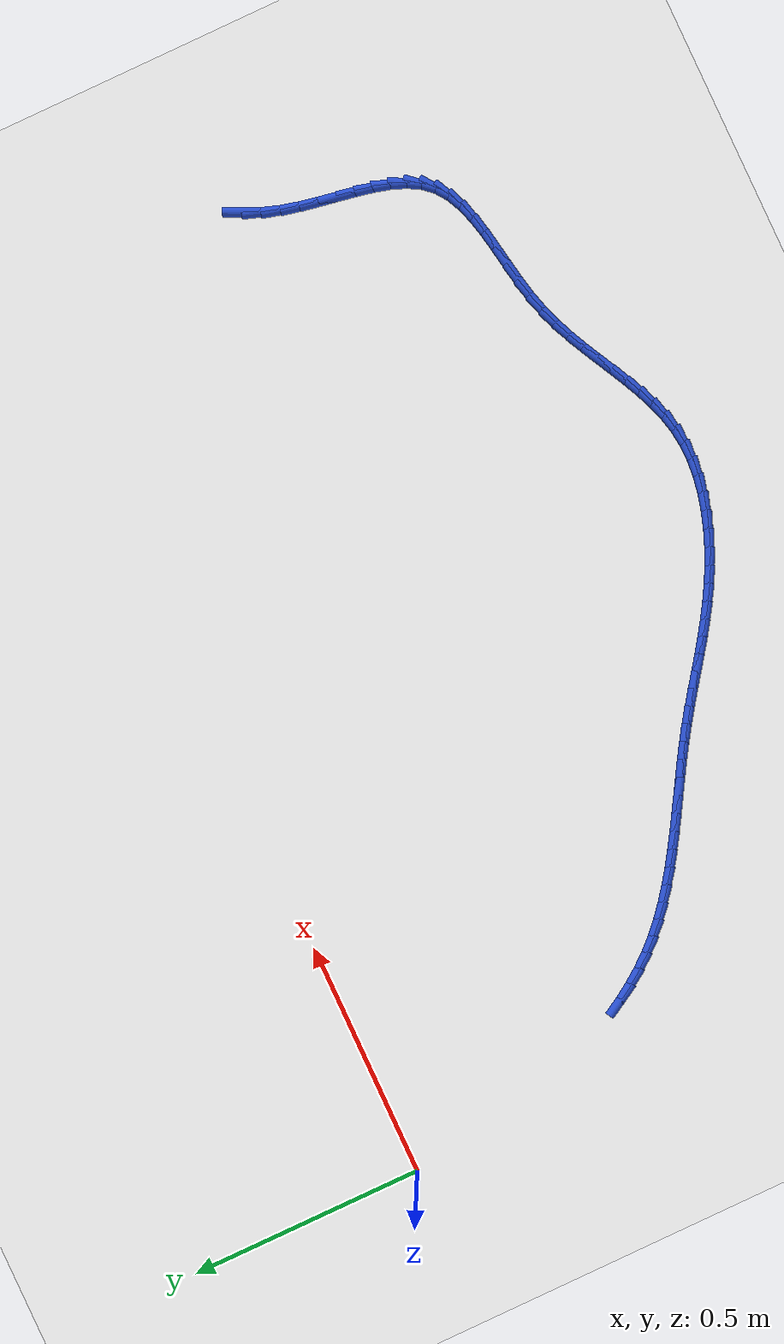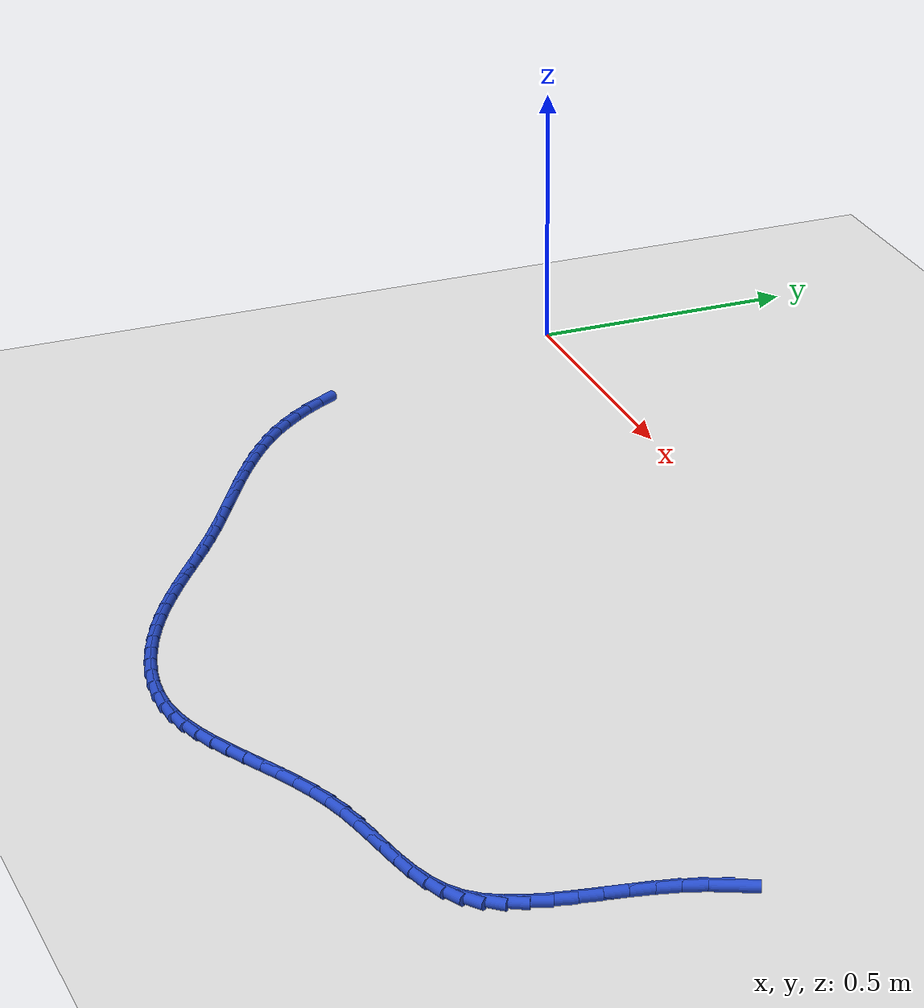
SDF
<sdf version="1.6">
 <world name="default">
  <model name="ground_plane">
   <static>1</static>
   <link name="link">
    <collision name="collision">
     <geometry><plane><normal>0 0 1</normal><size>100 100</size></plane></geometry>
     <surface><friction><ode><mu>100</mu><mu2>50</mu2></ode></friction></surface>
    </collision>
    <visual name="visual">
     <cast_shadows>0</cast_shadows>
     <geometry><plane><normal>0 0 1</normal><size>100 100</size></plane></geometry>
     <material>
      <script><uri>file://media/materials/scripts/gazebo.material</uri><name>Gazebo/WhiteGlow</name></script>
     </material>
    </visual>
   </link>
  </model>
  <model name="line">
   <link name="link_112">
    <pose>1.9185978857070742 -0.5021319839390961 0.01 0 1.57 1.1335719482349775</pose>
    <collision name="collision">
     <geometry><cylinder><radius>0.01</radius><length>0.08</length></cylinder></geometry>
    </collision>
    <visual name="visual">
     <material>
      <script><name>Gazebo/Blue</name><uri>file://media/materials/scripts/gazebo.material</uri></script>
     </material>
     <geometry><cylinder><radius>0.01</radius><length>0.08</length></cylinder></geometry>
    </visual>
   </link>
   <link name="link_113">
    <pose>1.9023092001907096 -0.5369819826895778 0.01 0 1.57 1.2430473741811647</pose>
    <collision name="collision">
     <geometry><cylinder><radius>0.01</radius><length>0.08</length></cylinder></geometry>
    </collision>
    <visual name="visual">
     <material>
      <script><name>Gazebo/Blue</name><uri>file://media/materials/scripts/gazebo.material</uri></script>
     </material>
     <geometry><cylinder><radius>0.01</radius><length>0.08</length></cylinder></geometry>
    </visual>
   </link>
   <link name="link_114">
    <pose>1.8897538018090976 -0.5739083593463385 0.01 0 1.57 1.3225783525256556</pose>
    <collision name="collision">
     <geometry><cylinder><radius>0.01</radius><length>0.08</length></cylinder></geometry>
    </collision>
    <visual name="visual">
     <material>
      <script><name>Gazebo/Blue</name><uri>file://media/materials/scripts/gazebo.material</uri></script>
     </material>
     <geometry><cylinder><radius>0.01</radius><length>0.08</length></cylinder></geometry>
    </visual>
   </link>
   <link name="link_115">
    <pose>1.880048833603324 -0.6122006305887772 0.01 0 1.57 1.373758591070866</pose>
    <collision name="collision">
     <geometry><cylinder><radius>0.01</radius><length>0.08</length></cylinder></geometry>
    </collision>
    <visual name="visual">
     <material>
      <script><name>Gazebo/Blue</name><uri>file://media/materials/scripts/gazebo.material</uri></script>
     </material>
     <geometry><cylinder><radius>0.01</radius><length>0.08</length></cylinder></geometry>
    </visual>
   </link>
   <link name="link_116">
    <pose>1.8722779103995035 -0.6511276724083286 0.01 0 1.57 1.3986030081499672</pose>
    <collision name="collision">
     <geometry><cylinder><radius>0.01</radius><length>0.08</length></cylinder></geometry>
    </collision>
    <visual name="visual">
     <material>
      <script><name>Gazebo/Blue</name><uri>file://media/materials/scripts/gazebo.material</uri></script>
     </material>
     <geometry><cylinder><radius>0.01</radius><length>0.08</length></cylinder></geometry>
    </visual>
   </link>
   <link name="link_117">
    <pose>1.8655246470237499 -0.6899583607964278 0.01 0 1.57 1.3975142318593234</pose>
    <collision name="collision">
     <geometry><cylinder><radius>0.01</radius><length>0.08</length></cylinder></geometry>
    </collision>
    <visual name="visual">
     <material>
      <script><name>Gazebo/Blue</name><uri>file://media/materials/scripts/gazebo.material</uri></script>
     </material>
     <geometry><cylinder><radius>0.01</radius><length>0.08</length></cylinder></geometry>
    </visual>
   </link>
   <link name="link_118">
    <pose>1.8588726583021777 -0.727961571744509 0.01 0 1.57 1.3687042649281265</pose>
    <collision name="collision">
     <geometry><cylinder><radius>0.01</radius><length>0.08</length></cylinder></geometry>
    </collision>
    <visual name="visual">
     <material>
      <script><name>Gazebo/Blue</name><uri>file://media/materials/scripts/gazebo.material</uri></script>
     </material>
     <geometry><cylinder><radius>0.01</radius><length>0.08</length></cylinder></geometry>
    </visual>
   </link>
   <link name="link_119">
    <pose>1.8514055590609004 -0.7644061812440083 0.01 0 1.57 1.307718354267309</pose>
    <collision name="collision">
     <geometry><cylinder><radius>0.01</radius><length>0.08</length></cylinder></geometry>
    </collision>
    <visual name="visual">
     <material>
      <script><name>Gazebo/Blue</name><uri>file://media/materials/scripts/gazebo.material</uri></script>
     </material>
     <geometry><cylinder><radius>0.01</radius><length>0.08</length></cylinder></geometry>
    </visual>
   </link>
   <link name="link_120">
    <pose>1.8422069641260326 -0.7985610652863602 0.01 0 1.57 1.2072131625357594</pose>
    <collision name="collision">
     <geometry><cylinder><radius>0.01</radius><length>0.08</length></cylinder></geometry>
    </collision>
    <visual name="visual">
     <material>
      <script><name>Gazebo/Blue</name><uri>file://media/materials/scripts/gazebo.material</uri></script>
     </material>
     <geometry><cylinder><radius>0.01</radius><length>0.08</length></cylinder></geometry>
    </visual>
   </link>
   <link name="link_121">
    <pose>1.8303604883236881 -0.8296950998629993 0.01 0 1.57 1.0581757337790911</pose>
    <collision name="collision">
     <geometry><cylinder><radius>0.01</radius><length>0.08</length></cylinder></geometry>
    </collision>
    <visual name="visual">
     <material>
      <script><name>Gazebo/Blue</name><uri>file://media/materials/scripts/gazebo.material</uri></script>
     </material>
     <geometry><cylinder><radius>0.01</radius><length>0.08</length></cylinder></geometry>
    </visual>
   </link>
   <link name="link_122">
    <pose>1.8149497464799809 -0.8570771609653605 0.01 0 1.57 0.8556081616285405</pose>
    <collision name="collision">
     <geometry><cylinder><radius>0.01</radius><length>0.08</length></cylinder></geometry>
    </collision>
    <visual name="visual">
     <material>
      <script><name>Gazebo/Blue</name><uri>file://media/materials/scripts/gazebo.material</uri></script>
     </material>
     <geometry><cylinder><radius>0.01</radius><length>0.08</length></cylinder></geometry>
    </visual>
   </link>
   <link name="link_123">
    <pose>1.7950592143111954 -0.8799769476190402 0.01 0 1.57 0.6289952313233421</pose>
    <collision name="collision">
     <geometry><cylinder><radius>0.01</radius><length>0.08</length></cylinder></geometry>
    </collision>
    <visual name="visual">
     <material>
      <script><name>Gazebo/Blue</name><uri>file://media/materials/scripts/gazebo.material</uri></script>
     </material>
     <geometry><cylinder><radius>0.01</radius><length>0.08</length></cylinder></geometry>
    </visual>
   </link>
   <link name="link_124">
    <pose>1.7701951935336386 -0.8980674358535167 0.01 0 1.57 0.44684547173565553</pose>
    <collision name="collision">
     <geometry><cylinder><radius>0.01</radius><length>0.08</length></cylinder></geometry>
    </collision>
    <visual name="visual">
     <material>
      <script><name>Gazebo/Blue</name><uri>file://media/materials/scripts/gazebo.material</uri></script>
     </material>
     <geometry><cylinder><radius>0.01</radius><length>0.08</length></cylinder></geometry>
    </visual>
   </link>
   <link name="link_125">
    <pose>1.7409646358441733 -0.9120738526890902 0.01 0 1.57 0.31843951065249143</pose>
    <collision name="collision">
     <geometry><cylinder><radius>0.01</radius><length>0.08</length></cylinder></geometry>
    </collision>
    <visual name="visual">
     <material>
      <script><name>Gazebo/Blue</name><uri>file://media/materials/scripts/gazebo.material</uri></script>
     </material>
     <geometry><cylinder><radius>0.01</radius><length>0.08</length></cylinder></geometry>
    </visual>
   </link>
   <link name="link_126">
    <pose>1.7081517575672376 -0.9228908948987551 0.01 0 1.57 0.23490042941704606</pose>
    <collision name="collision">
     <geometry><cylinder><radius>0.01</radius><length>0.08</length></cylinder></geometry>
    </collision>
    <visual name="visual">
     <material>
      <script><name>Gazebo/Blue</name><uri>file://media/materials/scripts/gazebo.material</uri></script>
     </material>
     <geometry><cylinder><radius>0.01</radius><length>0.08</length></cylinder></geometry>
    </visual>
   </link>
   <link name="link_127">
    <pose>1.672540775027272 -0.9314132592555054 0.01 0 1.57 0.18708612869953112</pose>
    <collision name="collision">
     <geometry><cylinder><radius>0.01</radius><length>0.08</length></cylinder></geometry>
    </collision>
    <visual name="visual">
     <material>
      <script><name>Gazebo/Blue</name><uri>file://media/materials/scripts/gazebo.material</uri></script>
     </material>
     <geometry><cylinder><radius>0.01</radius><length>0.08</length></cylinder></geometry>
    </visual>
   </link>
   <link name="link_128">
    <pose>1.6349159045487156 -0.9385356425323351 0.01 0 1.57 0.16868597947921388</pose>
    <collision name="collision">
     <geometry><cylinder><radius>0.01</radius><length>0.08</length></cylinder></geometry>
    </collision>
    <visual name="visual">
     <material>
      <script><name>Gazebo/Blue</name><uri>file://media/materials/scripts/gazebo.material</uri></script>
     </material>
     <geometry><cylinder><radius>0.01</radius><length>0.08</length></cylinder></geometry>
    </visual>
   </link>
   <link name="link_129">
    <pose>1.596061362456009 -0.9451527415022385 0.01 0 1.57 0.17642908012464978</pose>
    <collision name="collision">
     <geometry><cylinder><radius>0.01</radius><length>0.08</length></cylinder></geometry>
    </collision>
    <visual name="visual">
     <material>
      <script><name>Gazebo/Blue</name><uri>file://media/materials/scripts/gazebo.material</uri></script>
     </material>
     <geometry><cylinder><radius>0.01</radius><length>0.08</length></cylinder></geometry>
    </visual>
   </link>
   <link name="link_130">
    <pose>1.5567613650735914 -0.9521592529382098 0.01 0 1.57 0.20966430051776075</pose>
    <collision name="collision">
     <geometry><cylinder><radius>0.01</radius><length>0.08</length></cylinder></geometry>
    </collision>
    <visual name="visual">
     <material>
      <script><name>Gazebo/Blue</name><uri>file://media/materials/scripts/gazebo.material</uri></script>
     </material>
     <geometry><cylinder><radius>0.01</radius><length>0.08</length></cylinder></geometry>
    </visual>
   </link>
   <link name="link_131">
    <pose>1.5178001287259022 -0.9604498736132427 0.01 0 1.57 0.26969174647342087</pose>
    <collision name="collision">
     <geometry><cylinder><radius>0.01</radius><length>0.08</length></cylinder></geometry>
    </collision>
    <visual name="visual">
     <material>
      <script><name>Gazebo/Blue</name><uri>file://media/materials/scripts/gazebo.material</uri></script>
     </material>
     <geometry><cylinder><radius>0.01</radius><length>0.08</length></cylinder></geometry>
    </visual>
   </link>
   <link name="link_132">
    <pose>1.4799561974384758 -0.9709109315145228 0.01 0 1.57 0.34287748087123454</pose>
    <collision name="collision">
     <geometry><cylinder><radius>0.01</radius><length>0.08</length></cylinder></geometry>
    </collision>
    <visual name="visual">
     <material>
      <script><name>Gazebo/Blue</name><uri>file://media/materials/scripts/gazebo.material</uri></script>
     </material>
     <geometry><cylinder><radius>0.01</radius><length>0.08</length></cylinder></geometry>
    </visual>
   </link>
   <link name="link_133">
    <pose>1.4436341930531589 -0.9838770780134184 0.01 0 1.57 0.40303287285509004</pose>
    <collision name="collision">
     <geometry><cylinder><radius>0.01</radius><length>0.08</length></cylinder></geometry>
    </collision>
    <visual name="visual">
     <material>
      <script><name>Gazebo/Blue</name><uri>file://media/materials/scripts/gazebo.material</uri></script>
     </material>
     <geometry><cylinder><radius>0.01</radius><length>0.08</length></cylinder></geometry>
    </visual>
   </link>
   <link name="link_134">
    <pose>1.4086389750420494 -0.9987980881918621 0.01 0 1.57 0.44669279509561544</pose>
    <collision name="collision">
     <geometry><cylinder><radius>0.01</radius><length>0.08</length></cylinder></geometry>
    </collision>
    <visual name="visual">
     <material>
      <script><name>Gazebo/Blue</name><uri>file://media/materials/scripts/gazebo.material</uri></script>
     </material>
     <geometry><cylinder><radius>0.01</radius><length>0.08</length></cylinder></geometry>
    </visual>
   </link>
   <link name="link_135">
    <pose>1.3747213771827087 -1.0150440288030762 0.01 0 1.57 0.4731846038883604</pose>
    <collision name="collision">
     <geometry><cylinder><radius>0.01</radius><length>0.08</length></cylinder></geometry>
    </collision>
    <visual name="visual">
     <material>
      <script><name>Gazebo/Blue</name><uri>file://media/materials/scripts/gazebo.material</uri></script>
     </material>
     <geometry><cylinder><radius>0.01</radius><length>0.08</length></cylinder></geometry>
    </visual>
   </link>
   <link name="link_136">
    <pose>1.341632233252699 -1.0319849666002843 0.01 0 1.57 0.48195868831473154</pose>
    <collision name="collision">
     <geometry><cylinder><radius>0.01</radius><length>0.08</length></cylinder></geometry>
    </collision>
    <visual name="visual">
     <material>
      <script><name>Gazebo/Blue</name><uri>file://media/materials/scripts/gazebo.material</uri></script>
     </material>
     <geometry><cylinder><radius>0.01</radius><length>0.08</length></cylinder></geometry>
    </visual>
   </link>
   <link name="link_137">
    <pose>1.3091223770295817 -1.0489909683367098 0.01 0 1.57 0.4723420048394343</pose>
    <collision name="collision">
     <geometry><cylinder><radius>0.01</radius><length>0.08</length></cylinder></geometry>
    </collision>
    <visual name="visual">
     <material>
      <script><name>Gazebo/Blue</name><uri>file://media/materials/scripts/gazebo.material</uri></script>
     </material>
     <geometry><cylinder><radius>0.01</radius><length>0.08</length></cylinder></geometry>
    </visual>
   </link>
   <link name="link_138">
    <pose>1.2769426422909187 -1.0654321007655754 0.01 0 1.57 0.4434333296815296</pose>
    <collision name="collision">
     <geometry><cylinder><radius>0.01</radius><length>0.08</length></cylinder></geometry>
    </collision>
    <visual name="visual">
     <material>
      <script><name>Gazebo/Blue</name><uri>file://media/materials/scripts/gazebo.material</uri></script>
     </material>
     <geometry><cylinder><radius>0.01</radius><length>0.08</length></cylinder></geometry>
    </visual>
   </link>
   <link name="link_139">
    <pose>1.244843862814272 -1.0806784306401036 0.01 0 1.57 0.3941839964934015</pose>
    <collision name="collision">
     <geometry><cylinder><radius>0.01</radius><length>0.08</length></cylinder></geometry>
    </collision>
    <visual name="visual">
     <material>
      <script><name>Gazebo/Blue</name><uri>file://media/materials/scripts/gazebo.material</uri></script>
     </material>
     <geometry><cylinder><radius>0.01</radius><length>0.08</length></cylinder></geometry>
    </visual>
   </link>
   <link name="link_140">
    <pose>1.2125768723772026 -1.0941000247135195 0.01 0 1.57 0.32373557656736623</pose>
    <collision name="collision">
     <geometry><cylinder><radius>0.01</radius><length>0.08</length></cylinder></geometry>
    </collision>
    <visual name="visual">
     <material>
      <script><name>Gazebo/Blue</name><uri>file://media/materials/scripts/gazebo.material</uri></script>
     </material>
     <geometry><cylinder><radius>0.01</radius><length>0.08</length></cylinder></geometry>
    </visual>
   </link>
   <link name="link_141">
    <pose>1.1798925047572717 -1.1050669497390442 0.01 0 1.57 0.23208623499090125</pose>
    <collision name="collision">
     <geometry><cylinder><radius>0.01</radius><length>0.08</length></cylinder></geometry>
    </collision>
    <visual name="visual">
     <material>
      <script><name>Gazebo/Blue</name><uri>file://media/materials/scripts/gazebo.material</uri></script>
     </material>
     <geometry><cylinder><radius>0.01</radius><length>0.08</length></cylinder></geometry>
    </visual>
   </link>
   <link name="link_142">
    <pose>1.146541593732042 -1.112949272469902 0.01 0 1.57 0.12174932487859907</pose>
    <collision name="collision">
     <geometry><cylinder><radius>0.01</radius><length>0.08</length></cylinder></geometry>
    </collision>
    <visual name="visual">
     <material>
      <script><name>Gazebo/Blue</name><uri>file://media/materials/scripts/gazebo.material</uri></script>
     </material>
     <geometry><cylinder><radius>0.01</radius><length>0.08</length></cylinder></geometry>
    </visual>
   </link>
   <link name="link_143">
    <pose>1.1122880370427306 -1.1171403483273832 0.01 0 1.57 0.010542865124992518</pose>
    <collision name="collision">
     <geometry><cylinder><radius>0.01</radius><length>0.08</length></cylinder></geometry>
    </collision>
    <visual name="visual">
     <material>
      <script><name>Gazebo/Blue</name><uri>file://media/materials/scripts/gazebo.material</uri></script>
     </material>
     <geometry><cylinder><radius>0.01</radius><length>0.08</length></cylinder></geometry>
    </visual>
   </link>
   <link name="link_144">
    <pose>1.0771633900035045 -1.1175106764646874 0.01 0 1.57 -0.08750660412442757</pose>
    <collision name="collision">
     <geometry><cylinder><radius>0.01</radius><length>0.08</length></cylinder></geometry>
    </collision>
    <visual name="visual">
     <material>
      <script><name>Gazebo/Blue</name><uri>file://media/materials/scripts/gazebo.material</uri></script>
     </material>
     <geometry><cylinder><radius>0.01</radius><length>0.08</length></cylinder></geometry>
    </visual>
   </link>
   <link name="link_145">
    <pose>1.0414498131947418 -1.1143775012200545 0.01 0 1.57 -0.17325540930741337</pose>
    <collision name="collision">
     <geometry><cylinder><radius>0.01</radius><length>0.08</length></cylinder></geometry>
    </collision>
    <visual name="visual">
     <material>
      <script><name>Gazebo/Blue</name><uri>file://media/materials/scripts/gazebo.material</uri></script>
     </material>
     <geometry><cylinder><radius>0.01</radius><length>0.08</length></cylinder></geometry>
    </visual>
   </link>
   <link name="link_146">
    <pose>1.0054391160654452 -1.1080752676301193 0.01 0 1.57 -0.24844716452502966</pose>
    <collision name="collision">
     <geometry><cylinder><radius>0.01</radius><length>0.08</length></cylinder></geometry>
    </collision>
    <visual name="visual">
     <material>
      <script><name>Gazebo/Blue</name><uri>file://media/materials/scripts/gazebo.material</uri></script>
     </material>
     <geometry><cylinder><radius>0.01</radius><length>0.08</length></cylinder></geometry>
    </visual>
   </link>
   <link name="link_147">
    <pose>0.9694231080646166 -1.0989384207315136 0.01 0 1.57 -0.31486271745164096</pose>
    <collision name="collision">
     <geometry><cylinder><radius>0.01</radius><length>0.08</length></cylinder></geometry>
    </collision>
    <visual name="visual">
     <material>
      <script><name>Gazebo/Blue</name><uri>file://media/materials/scripts/gazebo.material</uri></script>
     </material>
     <geometry><cylinder><radius>0.01</radius><length>0.08</length></cylinder></geometry>
    </visual>
   </link>
   <link name="link_148">
    <pose>0.9336935986412601 -1.0873014055608718 0.01 0 1.57 -0.37416941748189153</pose>
    <collision name="collision">
     <geometry><cylinder><radius>0.01</radius><length>0.08</length></cylinder></geometry>
    </collision>
    <visual name="visual">
     <material>
      <script><name>Gazebo/Blue</name><uri>file://media/materials/scripts/gazebo.material</uri></script>
     </material>
     <geometry><cylinder><radius>0.01</radius><length>0.08</length></cylinder></geometry>
    </visual>
   </link>
   <link name="link_149">
    <pose>0.8985423972443788 -1.0734986671548263 0.01 0 1.57 -0.4278768017499381</pose>
    <collision name="collision">
     <geometry><cylinder><radius>0.01</radius><length>0.08</length></cylinder></geometry>
    </collision>
    <visual name="visual">
     <material>
      <script><name>Gazebo/Blue</name><uri>file://media/materials/scripts/gazebo.material</uri></script>
     </material>
     <geometry><cylinder><radius>0.01</radius><length>0.08</length></cylinder></geometry>
    </visual>
   </link>
   <link name="link_150">
    <pose>0.864261313322975 -1.0578646505500109 0.01 0 1.57 -0.47731258814833055</pose>
    <collision name="collision">
     <geometry><cylinder><radius>0.01</radius><length>0.08</length></cylinder></geometry>
    </collision>
    <visual name="visual">
     <material>
      <script><name>Gazebo/Blue</name><uri>file://media/materials/scripts/gazebo.material</uri></script>
     </material>
     <geometry><cylinder><radius>0.01</radius><length>0.08</length></cylinder></geometry>
    </visual>
   </link>
   <link name="link_151">
    <pose>0.831136925523728 -1.04073272340539 0.01 0 1.57 -0.5218446385611284</pose>
    <collision name="collision">
     <geometry><cylinder><radius>0.01</radius><length>0.08</length></cylinder></geometry>
    </collision>
    <visual name="visual">
     <material>
      <script><name>Gazebo/Blue</name><uri>file://media/materials/scripts/gazebo.material</uri></script>
     </material>
     <geometry><cylinder><radius>0.01</radius><length>0.08</length></cylinder></geometry>
    </visual>
   </link>
   <link name="link_152">
    <pose>0.7992406810797157 -1.0223919432021549 0.01 0 1.57 -0.559009566767424</pose>
    <collision name="collision">
     <geometry><cylinder><radius>0.01</radius><length>0.08</length></cylinder></geometry>
    </collision>
    <visual name="visual">
     <material>
      <script><name>Gazebo/Blue</name><uri>file://media/materials/scripts/gazebo.material</uri></script>
     </material>
     <geometry><cylinder><radius>0.01</radius><length>0.08</length></cylinder></geometry>
    </visual>
   </link>
   <link name="link_153">
    <pose>0.768357548911892 -1.0030723620687885 0.01 0 1.57 -0.588059542189666</pose>
    <collision name="collision">
     <geometry><cylinder><radius>0.01</radius><length>0.08</length></cylinder></geometry>
    </collision>
    <visual name="visual">
     <material>
      <script><name>Gazebo/Blue</name><uri>file://media/materials/scripts/gazebo.material</uri></script>
     </material>
     <geometry><cylinder><radius>0.01</radius><length>0.08</length></cylinder></geometry>
    </visual>
   </link>
   <link name="link_154">
    <pose>0.7382526298071916 -0.982999939934798 0.01 0 1.57 -0.6085927686868504</pose>
    <collision name="collision">
     <geometry><cylinder><radius>0.01</radius><length>0.08</length></cylinder></geometry>
    </collision>
    <visual name="visual">
     <material>
      <script><name>Gazebo/Blue</name><uri>file://media/materials/scripts/gazebo.material</uri></script>
     </material>
     <geometry><cylinder><radius>0.01</radius><length>0.08</length></cylinder></geometry>
    </visual>
   </link>
   <link name="link_155">
    <pose>0.7086910245525482 -0.9624006367296905 0.01 0 1.57 -0.6203646505335009</pose>
    <collision name="collision">
     <geometry><cylinder><radius>0.01</radius><length>0.08</length></cylinder></geometry>
    </collision>
    <visual name="visual">
     <material>
      <script><name>Gazebo/Blue</name><uri>file://media/materials/scripts/gazebo.material</uri></script>
     </material>
     <geometry><cylinder><radius>0.01</radius><length>0.08</length></cylinder></geometry>
    </visual>
   </link>
   <link name="link_156">
    <pose>0.6794378339348955 -0.9415004123829727 0.01 0 1.57 -0.6232511654951017</pose>
    <collision name="collision">
     <geometry><cylinder><radius>0.01</radius><length>0.08</length></cylinder></geometry>
    </collision>
    <visual name="visual">
     <material>
      <script><name>Gazebo/Blue</name><uri>file://media/materials/scripts/gazebo.material</uri></script>
     </material>
     <geometry><cylinder><radius>0.01</radius><length>0.08</length></cylinder></geometry>
    </visual>
   </link>
   <link name="link_157">
    <pose>0.6502581587411672 -0.9205252268241514 0.01 0 1.57 -0.617225386051508</pose>
    <collision name="collision">
     <geometry><cylinder><radius>0.01</radius><length>0.08</length></cylinder></geometry>
    </collision>
    <visual name="visual">
     <material>
      <script><name>Gazebo/Blue</name><uri>file://media/materials/scripts/gazebo.material</uri></script>
     </material>
     <geometry><cylinder><radius>0.01</radius><length>0.08</length></cylinder></geometry>
    </visual>
   </link>
   <link name="link_158">
    <pose>0.6209170997582972 -0.8997010399827337 0.01 0 1.57 -0.602351408056331</pose>
    <collision name="collision">
     <geometry><cylinder><radius>0.01</radius><length>0.08</length></cylinder></geometry>
    </collision>
    <visual name="visual">
     <material>
      <script><name>Gazebo/Blue</name><uri>file://media/materials/scripts/gazebo.material</uri></script>
     </material>
     <geometry><cylinder><radius>0.01</radius><length>0.08</length></cylinder></geometry>
    </visual>
   </link>
   <link name="link_159">
    <pose>0.5911797577732195 -0.8792538117882267 0.01 0 1.57 -0.579562800235539</pose>
    <collision name="collision">
     <geometry><cylinder><radius>0.01</radius><length>0.08</length></cylinder></geometry>
    </collision>
    <visual name="visual">
     <material>
      <script><name>Gazebo/Blue</name><uri>file://media/materials/scripts/gazebo.material</uri></script>
     </material>
     <geometry><cylinder><radius>0.01</radius><length>0.08</length></cylinder></geometry>
    </visual>
   </link>
   <link name="link_160">
    <pose>0.5608315813503016 -0.8593896022293596 0.01 0 1.57 -0.5581915824461177</pose>
    <collision name="collision">
     <geometry><cylinder><radius>0.01</radius><length>0.08</length></cylinder></geometry>
    </collision>
    <visual name="visual">
     <material>
      <script><name>Gazebo/Blue</name><uri>file://media/materials/scripts/gazebo.material</uri></script>
     </material>
     <geometry><cylinder><radius>0.01</radius><length>0.08</length></cylinder></geometry>
    </visual>
   </link>
   <link name="link_161">
    <pose>0.5299018212416017 -0.8400760349785595 0.01 0 1.57 -0.544162505578523</pose>
    <collision name="collision">
     <geometry><cylinder><radius>0.01</radius><length>0.08</length></cylinder></geometry>
    </collision>
    <visual name="visual">
     <material>
      <script><name>Gazebo/Blue</name><uri>file://media/materials/scripts/gazebo.material</uri></script>
     </material>
     <geometry><cylinder><radius>0.01</radius><length>0.08</length></cylinder></geometry>
    </visual>
   </link>
   <link name="link_162">
    <pose>0.49858053697291055 -0.8211234641939757 0.01 0 1.57 -0.5374294989280268</pose>
    <collision name="collision">
     <geometry><cylinder><radius>0.01</radius><length>0.08</length></cylinder></geometry>
    </collision>
    <visual name="visual">
     <material>
      <script><name>Gazebo/Blue</name><uri>file://media/materials/scripts/gazebo.material</uri></script>
     </material>
     <geometry><cylinder><radius>0.01</radius><length>0.08</length></cylinder></geometry>
    </visual>
   </link>
   <link name="link_163">
    <pose>0.4670606307522855 -0.8023394639164231 0.01 0 1.57 -0.5379079662714681</pose>
    <collision name="collision">
     <geometry><cylinder><radius>0.01</radius><length>0.08</length></cylinder></geometry>
    </collision>
    <visual name="visual">
     <material>
      <script><name>Gazebo/Blue</name><uri>file://media/materials/scripts/gazebo.material</uri></script>
     </material>
     <geometry><cylinder><radius>0.01</radius><length>0.08</length></cylinder></geometry>
    </visual>
   </link>
   <link name="link_164">
    <pose>0.43553500478778406 -0.7835316081867163 0.01 0 1.57 -0.5455903527088697</pose>
    <collision name="collision">
     <geometry><cylinder><radius>0.01</radius><length>0.08</length></cylinder></geometry>
    </collision>
    <visual name="visual">
     <material>
      <script><name>Gazebo/Blue</name><uri>file://media/materials/scripts/gazebo.material</uri></script>
     </material>
     <geometry><cylinder><radius>0.01</radius><length>0.08</length></cylinder></geometry>
    </visual>
   </link>
   <link name="link_165">
    <pose>0.40419656128746395 -0.7645074710456703 0.01 0 1.57 -0.5605450827603256</pose>
    <collision name="collision">
     <geometry><cylinder><radius>0.01</radius><length>0.08</length></cylinder></geometry>
    </collision>
    <visual name="visual">
     <material>
      <script><name>Gazebo/Blue</name><uri>file://media/materials/scripts/gazebo.material</uri></script>
     </material>
     <geometry><cylinder><radius>0.01</radius><length>0.08</length></cylinder></geometry>
    </visual>
   </link>
   <link name="link_166">
    <pose>0.37323820245938316 -0.7450746265341001 0.01 0 1.57 -0.5829059427524451</pose>
    <collision name="collision">
     <geometry><cylinder><radius>0.01</radius><length>0.08</length></cylinder></geometry>
    </collision>
    <visual name="visual">
     <material>
      <script><name>Gazebo/Blue</name><uri>file://media/materials/scripts/gazebo.material</uri></script>
     </material>
     <geometry><cylinder><radius>0.01</radius><length>0.08</length></cylinder></geometry>
    </visual>
   </link>
   <link name="link_167">
    <pose>0.34285283051159793 -0.7250406486928191 0.01 0 1.57 -0.6128504355225214</pose>
    <collision name="collision">
     <geometry><cylinder><radius>0.01</radius><length>0.08</length></cylinder></geometry>
    </collision>
    <visual name="visual">
     <material>
      <script><name>Gazebo/Blue</name><uri>file://media/materials/scripts/gazebo.material</uri></script>
     </material>
     <geometry><cylinder><radius>0.01</radius><length>0.08</length></cylinder></geometry>
    </visual>
   </link>
   <link name="link_168">
    <pose>0.31323334765216665 -0.7042131115626435 0.01 0 1.57 -0.650564470215523</pose>
    <collision name="collision">
     <geometry><cylinder><radius>0.01</radius><length>0.08</length></cylinder></geometry>
    </collision>
    <visual name="visual">
     <material>
      <script><name>Gazebo/Blue</name><uri>file://media/materials/scripts/gazebo.material</uri></script>
     </material>
     <geometry><cylinder><radius>0.01</radius><length>0.08</length></cylinder></geometry>
    </visual>
   </link>
   <link name="link_169">
    <pose>0.28457265608914656 -0.6823995891843871 0.01 0 1.57 -0.6961903872829337</pose>
    <collision name="collision">
     <geometry><cylinder><radius>0.01</radius><length>0.08</length></cylinder></geometry>
    </collision>
    <visual name="visual">
     <material>
      <script><name>Gazebo/Blue</name><uri>file://media/materials/scripts/gazebo.material</uri></script>
     </material>
     <geometry><cylinder><radius>0.01</radius><length>0.08</length></cylinder></geometry>
    </visual>
   </link>
   <link name="link_170">
    <pose>0.25706365803059544 -0.6594076555988653 0.01 0 1.57 -0.7497565762178461</pose>
    <collision name="collision">
     <geometry><cylinder><radius>0.01</radius><length>0.08</length></cylinder></geometry>
    </collision>
    <visual name="visual">
     <material>
      <script><name>Gazebo/Blue</name><uri>file://media/materials/scripts/gazebo.material</uri></script>
     </material>
     <geometry><cylinder><radius>0.01</radius><length>0.08</length></cylinder></geometry>
    </visual>
   </link>
   <link name="link_171">
    <pose>0.2308992556845706 -0.6350448848468924 0.01 0 1.57 -0.8110766437297902</pose>
    <collision name="collision">
     <geometry><cylinder><radius>0.01</radius><length>0.08</length></cylinder></geometry>
    </collision>
    <visual name="visual">
     <material>
      <script><name>Gazebo/Blue</name><uri>file://media/materials/scripts/gazebo.material</uri></script>
     </material>
     <geometry><cylinder><radius>0.01</radius><length>0.08</length></cylinder></geometry>
    </visual>
   </link>
   <link name="link_172">
    <pose>0.20627205728417988 -0.6091192819372321 0.01 0 1.57 -0.8763761738616803</pose>
    <collision name="collision">
     <geometry><cylinder><radius>0.01</radius><length>0.08</length></cylinder></geometry>
    </collision>
    <visual name="visual">
     <material>
      <script><name>Gazebo/Blue</name><uri>file://media/materials/scripts/gazebo.material</uri></script>
     </material>
     <geometry><cylinder><radius>0.01</radius><length>0.08</length></cylinder></geometry>
    </visual>
   </link>
   <link name="link_173">
    <pose>0.18330500410030873 -0.5815409838042294 0.01 0 1.57 -0.9377709479658765</pose>
    <collision name="collision">
     <geometry><cylinder><radius>0.01</radius><length>0.08</length></cylinder></geometry>
    </collision>
    <visual name="visual">
     <material>
      <script><name>Gazebo/Blue</name><uri>file://media/materials/scripts/gazebo.material</uri></script>
     </material>
     <geometry><cylinder><radius>0.01</radius><length>0.08</length></cylinder></geometry>
    </visual>
   </link>
   <link name="link_174">
    <pose>0.1619618296318791 -0.5524535263392184 0.01 0 1.57 -0.9943218713232415</pose>
    <collision name="collision">
     <geometry><cylinder><radius>0.01</radius><length>0.08</length></cylinder></geometry>
    </collision>
    <visual name="visual">
     <material>
      <script><name>Gazebo/Blue</name><uri>file://media/materials/scripts/gazebo.material</uri></script>
     </material>
     <geometry><cylinder><radius>0.01</radius><length>0.08</length></cylinder></geometry>
    </visual>
   </link>
   <link name="link_175">
    <pose>0.14218412860803276 -0.5220329009205463 0.01 0 1.57 -1.0462674836529875</pose>
    <collision name="collision">
     <geometry><cylinder><radius>0.01</radius><length>0.08</length></cylinder></geometry>
    </collision>
    <visual name="visual">
     <material>
      <script><name>Gazebo/Blue</name><uri>file://media/materials/scripts/gazebo.material</uri></script>
     </material>
     <geometry><cylinder><radius>0.01</radius><length>0.08</length></cylinder></geometry>
    </visual>
   </link>
  </model>
 </world>
</sdf>
